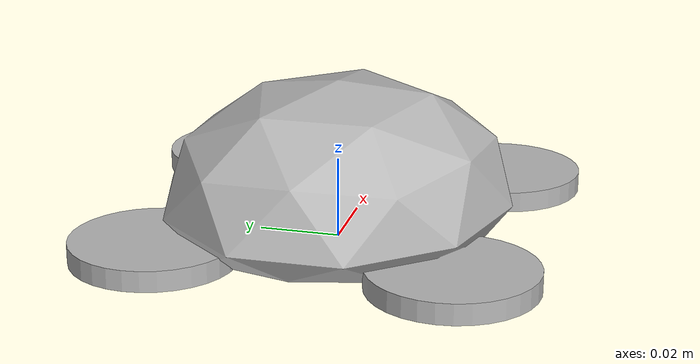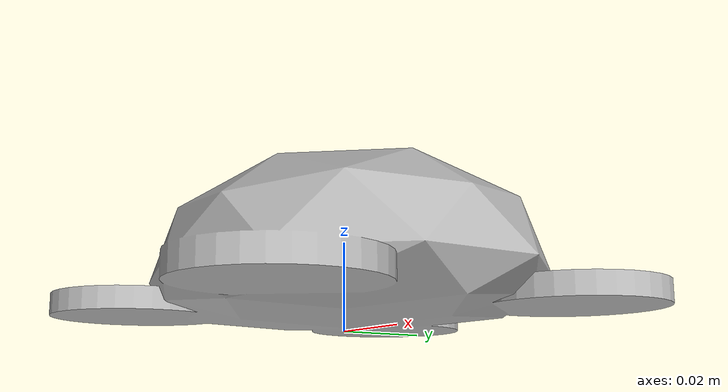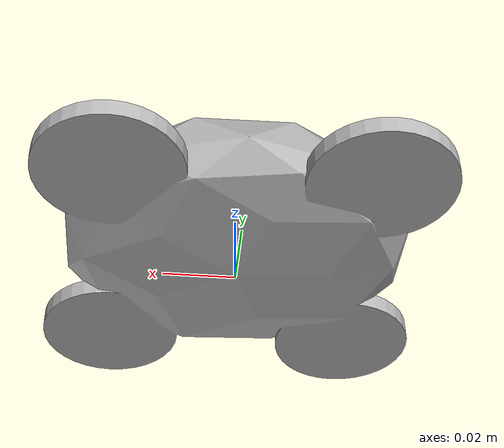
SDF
<?xml version='1.0'?>
<sdf version='1.4'>
  <model name="turtledrone">
  <link name='chassis'>
    <collision name='collision'>
      <geometry>
        <mesh><uri>model://turtledrone/turtledrone.dae</uri></mesh>
      </geometry>
    </collision>
    <visual name='visual'>
      <geometry>
        <mesh><uri>model://turtledrone/turtledrone.dae</uri></mesh>
      </geometry>
    </visual>
  </link>
  </model>
</sdf>
